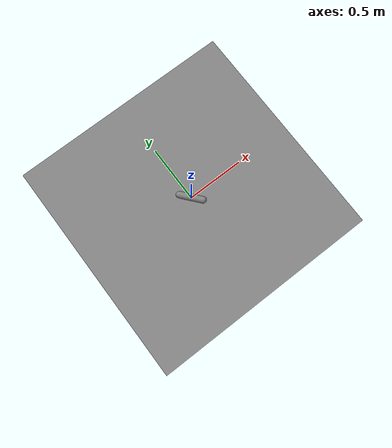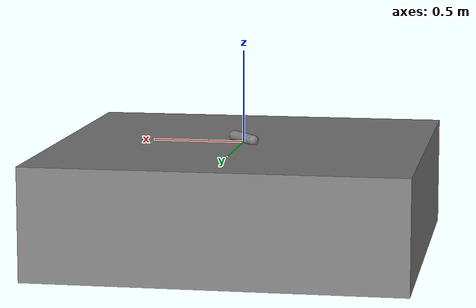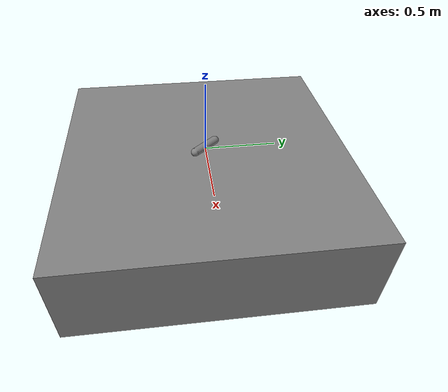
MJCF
<mujoco>
  <option>
    <flag multiccd="enable"/>
  </option>

  <visual>
    <quality shadowsize="8192"/>
    <scale forcewidth="0.01" contactwidth="0.05" contactheight="0.05"/>
    <map force="0.1"/>
  </visual>

  <asset>
    <mesh name="box" vertex="-1 -1 -1 1 -1 -1 1 1 -1 1 1 1 1 -1 1 -1 1 -1 -1 1 1 -1 -1 1"
          scale="1 1 .3"/>
  </asset>

  <worldbody>
    <light pos="0 0 1"/>
    <geom type="mesh" mesh="box" pos="0 0 -.3"/>
    <body pos="0 0 .02" euler="90 40 0">
      <freejoint/>
      <geom type="capsule" size=".03 .1"/>
    </body>
  </worldbody>
</mujoco>
